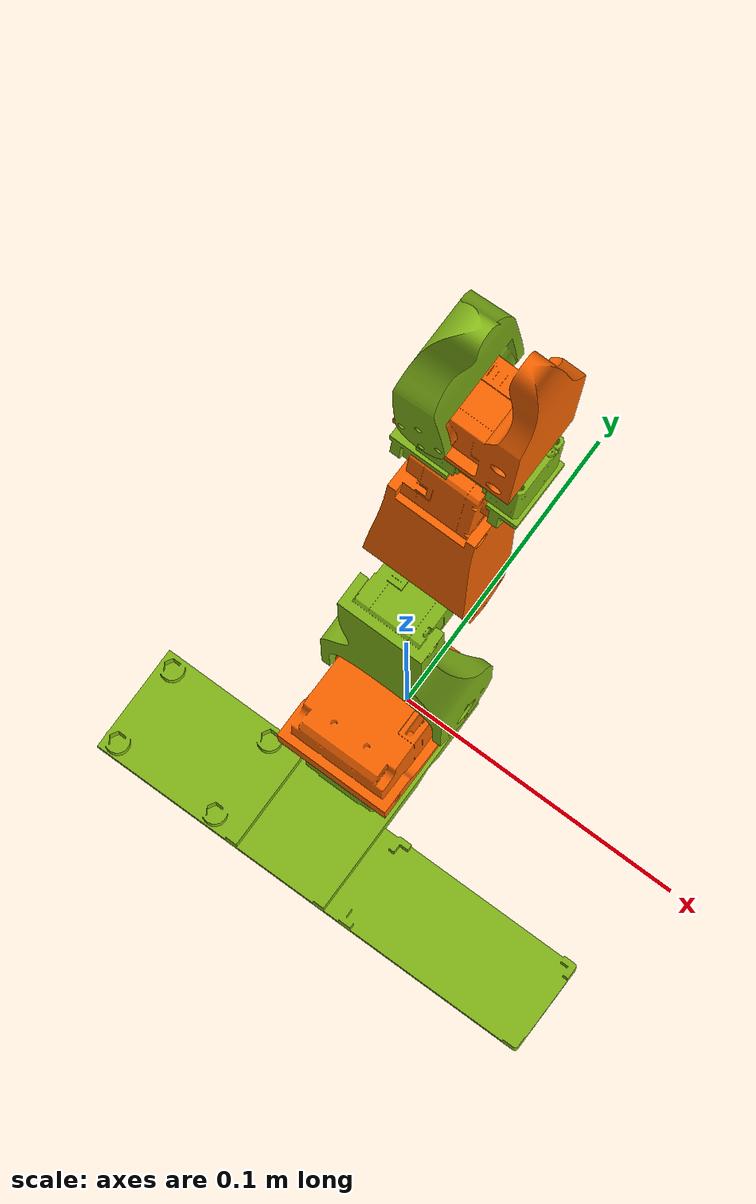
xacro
<?xml version="1.0" encoding="UTF-8"?>
<robot xmlns:xacro="http://wiki.ros.org/xacro" name="rrbot">

  <!-- Use this if parameters are set from the launch file, otherwise delete -->
  <xacro:arg name="use_mock_hardware" default="false" />
  <xacro:arg name="mock_sensor_commands" default="false" />

  <xacro:include filename="$(find surros_description)/urdf/follower_arm_macro.xacro"/>
  <xacro:include filename="$(find surros_description)/urdf/follower_arm_macro.ros2_control.xacro"/>

  <!-- Load robot's macro with parameters -->
  <!-- set prefix if multiple robots are used -->
  <xacro:surros_robot >
  </xacro:surros_robot>

  <xacro:surros_robot_ros2_control
    name="surros_robot"
    use_mock_hardware="$(arg use_mock_hardware)"
    mock_sensor_commands="$(arg mock_sensor_commands)" />

</robot>

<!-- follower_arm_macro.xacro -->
<robot xmlns:xacro="http://ros.org/wiki/xacro" name="myfirst">

  <xacro:include filename="$(find surros_description)/urdf/common.xacro" />

  <xacro:macro name="surros_robot">

    <!-- Links -->
    <xacro:visual_link name="base_link" mesh="base_link" xyz="0 0 0" rpy="0 0 0" material="M1"/>
    <xacro:visual_link name="link_1" mesh="link_1" xyz="0 0 0.0563" rpy="3.141592 0 3.141592" material="M2"/>
    <xacro:visual_link name="link_2" mesh="link_2" xyz="0.0148 -0.1083 0" rpy="3.141592 0 0" material="M1"/>
    <xacro:visual_link name="link_3" mesh="link_3" xyz="0.100471 -0.002879 0" rpy="3.141592 0 0" material="M2"/>
    <xacro:visual_link name="link_4" mesh="link_4" xyz="0.0305 0.000007 0.001353" rpy="0 -1.5708 3.1416" material="M1"/>
    <xacro:visual_link name="link_5" mesh="link_5" xyz="0 0.0075 0.058" rpy="-1.5708 0 1.5708" material="M2"/>
    <xacro:visual_link name="gripper_move" mesh="gripper_move" xyz="0 0 0" rpy="-1.5708 0 1.5708" material="M1"/>
    <link name="tcp"/>

    <!-- Joints -->
    <xacro:rotational_joint name="theta_1" parent="base_link" child="link_1" xyz="0 0 0" rpy="0 0 0" axis="0 0 1" type="revolute" lower="-1.571" upper="1.571" effort="0" velocity="30.0"/>
    <xacro:rotational_joint name="theta_2" parent="link_1" child="link_2" xyz="0 0 0.0563" rpy="-1.5708 0 1.5708" axis="0 0 1" type="revolute" lower="-0.5" upper="0.5" effort="0" velocity="30.0"/>
    <xacro:rotational_joint name="theta_3" parent="link_2" child="link_3" xyz="0.0148 -0.1083 0" rpy="0 0 -1.43498" axis="0 0 1" type="revolute" lower="-1.571" upper="1.571" effort="0" velocity="30.0"/>
    <xacro:rotational_joint name="theta_4" parent="link_3" child="link_4" xyz="0.100471 -0.002879 0" rpy="0 0 -0.028647" axis="0 0 1" type="revolute" lower="-1.571" upper="1.571" effort="0" velocity="30.0"/>
    <xacro:rotational_joint name="theta_5" parent="link_4" child="link_5" xyz="0 0.000007 -0.001353" rpy="1.5708 0 1.5708" axis="0 0 1" type="revolute" lower="-1.571" upper="1.571" effort="0" velocity="30.0"/>
    <xacro:rotational_joint name="theta_6" parent="link_5" child="gripper_move" xyz="0 0.0075 0.05815" rpy="0 0 0" axis="1 0 0" type="revolute" lower="-1.571" upper="1.571" effort="0" velocity="30.0"/>
    <xacro:fixed_joint name="tcp" parent="link_5" child="tcp" xyz="0 -0.00738 0.11387" rpy="0 0 1.5708"/>

  </xacro:macro>
</robot>

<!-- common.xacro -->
<robot xmlns:xacro="http://www.ros.org/wiki/xacro">

  <!-- Material definition -->
  <material name="M1">
    <color rgba="0.5176 0.7216 0.0941 1.0"/>
  </material>
  <material name="M2">
    <color rgba="1.0 0.4 0.0 1.0"/>
  </material>

  <!-- Macro to define visual links with customizable material -->
  <xacro:macro name="visual_link" params="name mesh xyz rpy material='gray'">
    <link name="${name}">
      <visual>
        <origin xyz="${xyz}" rpy="${rpy}"/>
        <geometry>
          <mesh filename="package://surros_description/mesh/${mesh}.stl"/>
        </geometry>
        <material name="${material}"/>
      </visual>
    </link>
  </xacro:macro>

  <!-- Macro to define joints -->
  <xacro:macro name="rotational_joint" params="name parent child xyz rpy axis lower upper effort velocity type='continuous'">
    <joint name="${name}" type="${type}">
      <parent link="${parent}"/>
      <child link="${child}"/>
      <origin xyz="${xyz}" rpy="${rpy}"/>
      <axis xyz="${axis}"/>
      <xacro:if value="${type != 'fixed'}">
        <limit lower="${lower}" upper="${upper}" effort="${effort}" velocity="${velocity}"/>
      </xacro:if>
      <hardwareInterface>position</hardwareInterface>
      <hardwareInterface>velocity</hardwareInterface>
      <hardwareInterface>effort</hardwareInterface>
    </joint>
  </xacro:macro>

  <xacro:macro name="fixed_joint" params="name parent child xyz rpy">
    <joint name="${name}" type="fixed">
      <parent link="${parent}"/>
      <child link="${child}"/>
      <origin xyz="${xyz}" rpy="${rpy}"/>
    </joint>
  </xacro:macro>

</robot>
